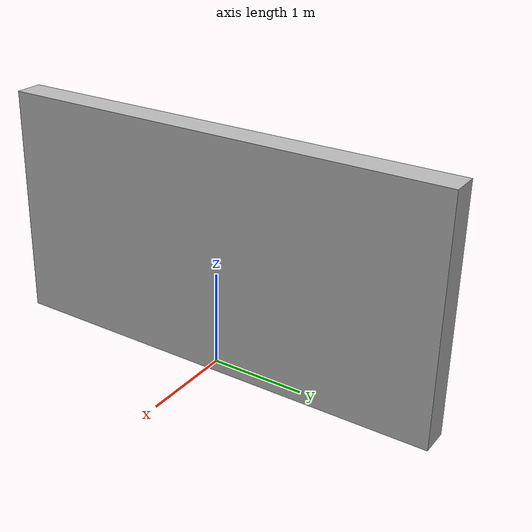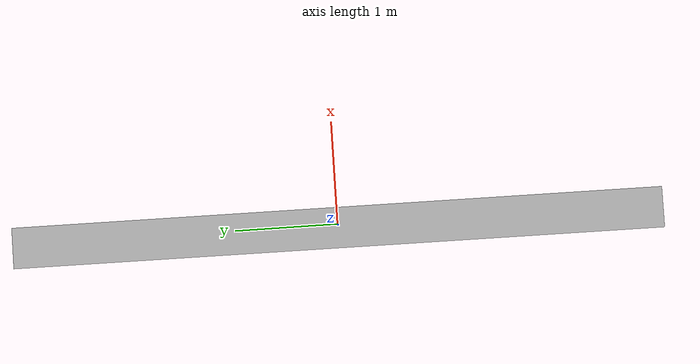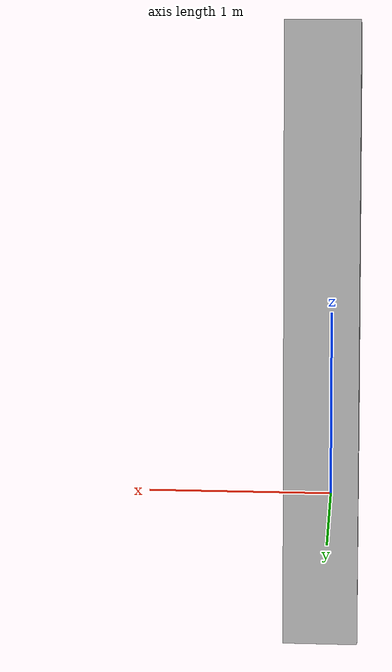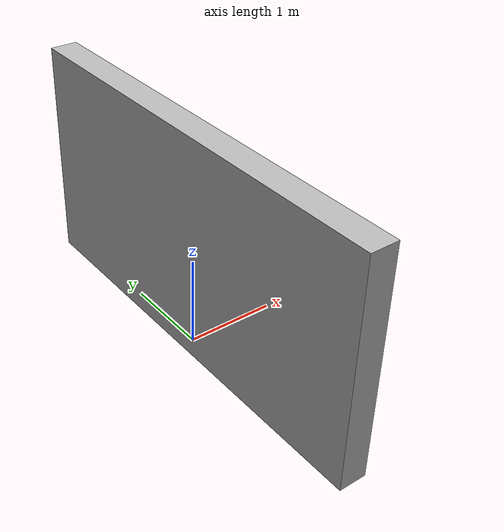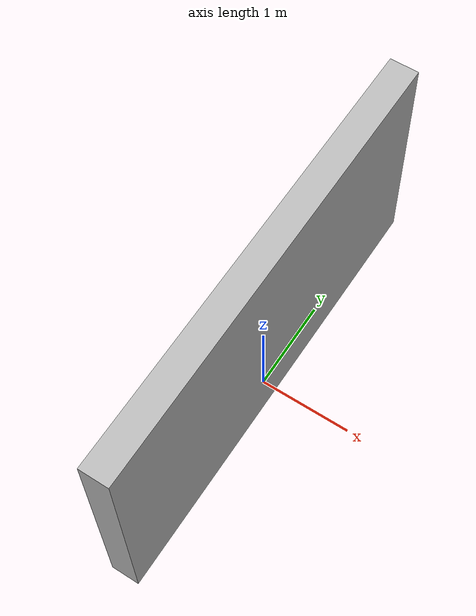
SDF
<?xml version="1.0" ?>
<sdf version="1.5">
  <model name="corridor_wall3">
    <static>true</static>
    <link name="link">
      <pose>0 0 1.25 0 0 1.5708</pose>
      <collision name="collision">
        <geometry>
          <box>
            <size>4.8 0.3 2.5</size>
          </box>
        </geometry>
      </collision>
      <visual name="visual">
        <cast_shadows>false</cast_shadows>
        <geometry>
          <box>
            <size>4.8 0.3 2.5</size>
          </box>
        </geometry>
        <material>
          <script>
            <uri>model://corridor_wall3/materials/scripts</uri>
            <uri>model://corridor_wall3/materials/textures</uri>
            <name>vrc/corridor_wall3</name>
          </script>
        </material>
      </visual>
    </link>
  </model>
</sdf>
